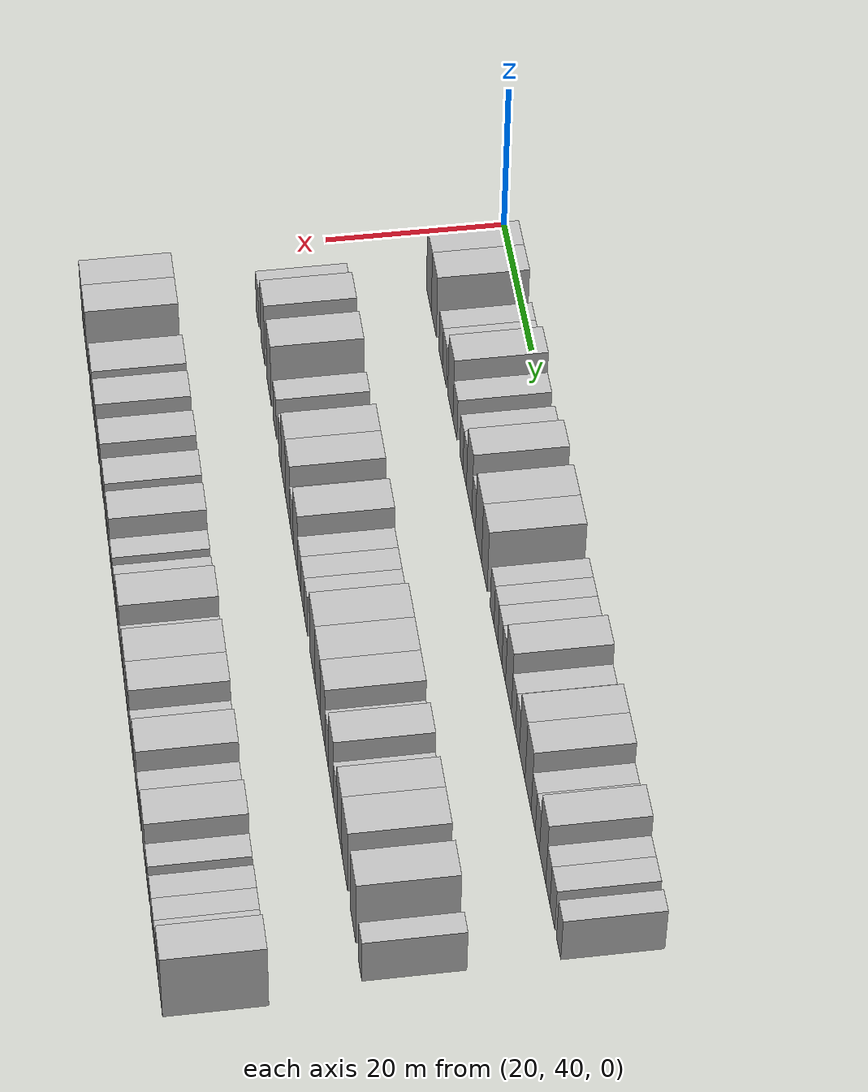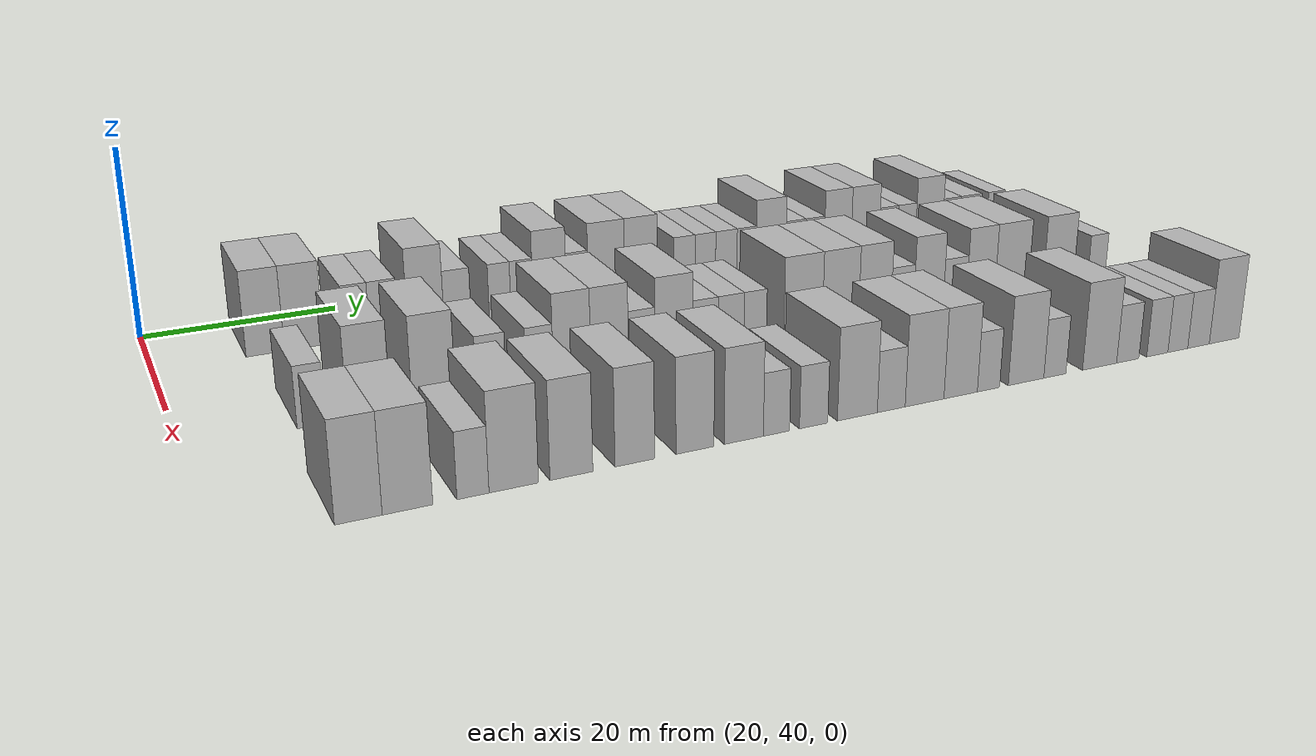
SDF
<sdf version="1.6">
 <world name="default">
  <model name="building_76">
   <static>1</static>
   <pose>25.0000 50.7838 0 0.000000 0.000000 0.000000</pose>
   <link name="link">
    <pose>0 0 4.50 0 0 0</pose>
    <collision name="collision"><geometry><box><size>10.0000 3.7774 9.0000</size></box></geometry></collision>
    <visual name="visual">
     <cast_shadows>0</cast_shadows>
     <geometry><box><size>10.0000 3.7774 9.0000</size></box></geometry>
     <material>
      <script>
       <uri>model://HANNAS_wall/materials/scripts</uri>
       <uri>model://HANNAS_wall/materials/textures</uri>
       <name>vrc/HANNAS_wall</name>
      </script>
     </material>
    </visual>
   </link>
  </model>
  <model name="building_77">
   <static>1</static>
   <pose>25.0000 54.6504 0 0.000000 0.000000 0.000000</pose>
   <link name="link">
    <pose>0 0 4.50 0 0 0</pose>
    <collision name="collision"><geometry><box><size>10.0000 3.9557 9.0000</size></box></geometry></collision>
    <visual name="visual">
     <cast_shadows>0</cast_shadows>
     <geometry><box><size>10.0000 3.9557 9.0000</size></box></geometry>
     <material>
      <script>
       <uri>model://HANNAS_wall/materials/scripts</uri>
       <uri>model://HANNAS_wall/materials/textures</uri>
       <name>vrc/HANNAS_wall</name>
      </script>
     </material>
    </visual>
   </link>
  </model>
  <model name="building_78">
   <static>1</static>
   <pose>25.0000 59.9779 0 0.000000 0.000000 0.000000</pose>
   <link name="link">
    <pose>0 0 3.00 0 0 0</pose>
    <collision name="collision"><geometry><box><size>10.0000 2.6995 6.0000</size></box></geometry></collision>
    <visual name="visual">
     <cast_shadows>0</cast_shadows>
     <geometry><box><size>10.0000 2.6995 6.0000</size></box></geometry>
     <material>
      <script>
       <uri>model://HANNAS_wall/materials/scripts</uri>
       <uri>model://HANNAS_wall/materials/textures</uri>
       <name>vrc/HANNAS_wall</name>
      </script>
     </material>
    </visual>
   </link>
  </model>
  <model name="building_79">
   <static>1</static>
   <pose>25.0000 62.8189 0 0.000000 0.000000 0.000000</pose>
   <link name="link">
    <pose>0 0 3.00 0 0 0</pose>
    <collision name="collision"><geometry><box><size>10.0000 2.9825 6.0000</size></box></geometry></collision>
    <visual name="visual">
     <cast_shadows>0</cast_shadows>
     <geometry><box><size>10.0000 2.9825 6.0000</size></box></geometry>
     <material>
      <script>
       <uri>model://HANNAS_wall/materials/scripts</uri>
       <uri>model://HANNAS_wall/materials/textures</uri>
       <name>vrc/HANNAS_wall</name>
      </script>
     </material>
    </visual>
   </link>
  </model>
  <model name="building_80">
   <static>1</static>
   <pose>25.0000 67.2562 0 0.000000 0.000000 0.000000</pose>
   <link name="link">
    <pose>0 0 4.50 0 0 0</pose>
    <collision name="collision"><geometry><box><size>10.0000 3.8920 9.0000</size></box></geometry></collision>
    <visual name="visual">
     <cast_shadows>0</cast_shadows>
     <geometry><box><size>10.0000 3.8920 9.0000</size></box></geometry>
     <material>
      <script>
       <uri>model://HANNAS_wall/materials/scripts</uri>
       <uri>model://HANNAS_wall/materials/textures</uri>
       <name>vrc/HANNAS_wall</name>
      </script>
     </material>
    </visual>
   </link>
  </model>
  <model name="building_81">
   <static>1</static>
   <pose>25.0000 70.6733 0 0.000000 0.000000 0.000000</pose>
   <link name="link">
    <pose>0 0 3.00 0 0 0</pose>
    <collision name="collision"><geometry><box><size>10.0000 2.9423 6.0000</size></box></geometry></collision>
    <visual name="visual">
     <cast_shadows>0</cast_shadows>
     <geometry><box><size>10.0000 2.9423 6.0000</size></box></geometry>
     <material>
      <script>
       <uri>model://HANNAS_wall/materials/scripts</uri>
       <uri>model://HANNAS_wall/materials/textures</uri>
       <name>vrc/HANNAS_wall</name>
      </script>
     </material>
    </visual>
   </link>
  </model>
  <model name="building_82">
   <static>1</static>
   <pose>25.0000 75.3547 0 0.000000 0.000000 0.000000</pose>
   <link name="link">
    <pose>0 0 3.00 0 0 0</pose>
    <collision name="collision"><geometry><box><size>10.0000 2.4203 6.0000</size></box></geometry></collision>
    <visual name="visual">
     <cast_shadows>0</cast_shadows>
     <geometry><box><size>10.0000 2.4203 6.0000</size></box></geometry>
     <material>
      <script>
       <uri>model://HANNAS_wall/materials/scripts</uri>
       <uri>model://HANNAS_wall/materials/textures</uri>
       <name>vrc/HANNAS_wall</name>
      </script>
     </material>
    </visual>
   </link>
  </model>
  <model name="building_83">
   <static>1</static>
   <pose>25.0000 77.8118 0 0.000000 0.000000 0.000000</pose>
   <link name="link">
    <pose>0 0 3.00 0 0 0</pose>
    <collision name="collision"><geometry><box><size>10.0000 2.4938 6.0000</size></box></geometry></collision>
    <visual name="visual">
     <cast_shadows>0</cast_shadows>
     <geometry><box><size>10.0000 2.4938 6.0000</size></box></geometry>
     <material>
      <script>
       <uri>model://HANNAS_wall/materials/scripts</uri>
       <uri>model://HANNAS_wall/materials/textures</uri>
       <name>vrc/HANNAS_wall</name>
      </script>
     </material>
    </visual>
   </link>
  </model>
  <model name="building_84">
   <static>1</static>
   <pose>25.0000 80.9627 0 0.000000 0.000000 0.000000</pose>
   <link name="link">
    <pose>0 0 4.50 0 0 0</pose>
    <collision name="collision"><geometry><box><size>10.0000 3.8081 9.0000</size></box></geometry></collision>
    <visual name="visual">
     <cast_shadows>0</cast_shadows>
     <geometry><box><size>10.0000 3.8081 9.0000</size></box></geometry>
     <material>
      <script>
       <uri>model://HANNAS_wall/materials/scripts</uri>
       <uri>model://HANNAS_wall/materials/textures</uri>
       <name>vrc/HANNAS_wall</name>
      </script>
     </material>
    </visual>
   </link>
  </model>
  <model name="building_85">
   <static>1</static>
   <pose>25.0000 84.1390 0 0.000000 0.000000 0.000000</pose>
   <link name="link">
    <pose>0 0 3.00 0 0 0</pose>
    <collision name="collision"><geometry><box><size>10.0000 2.5444 6.0000</size></box></geometry></collision>
    <visual name="visual">
     <cast_shadows>0</cast_shadows>
     <geometry><box><size>10.0000 2.5444 6.0000</size></box></geometry>
     <material>
      <script>
       <uri>model://HANNAS_wall/materials/scripts</uri>
       <uri>model://HANNAS_wall/materials/textures</uri>
       <name>vrc/HANNAS_wall</name>
      </script>
     </material>
    </visual>
   </link>
  </model>
  <model name="building_86">
   <static>1</static>
   <pose>25.0000 87.5501 0 0.000000 0.000000 0.000000</pose>
   <link name="link">
    <pose>0 0 4.50 0 0 0</pose>
    <collision name="collision"><geometry><box><size>10.0000 4.2779 9.0000</size></box></geometry></collision>
    <visual name="visual">
     <cast_shadows>0</cast_shadows>
     <geometry><box><size>10.0000 4.2779 9.0000</size></box></geometry>
     <material>
      <script>
       <uri>model://HANNAS_wall/materials/scripts</uri>
       <uri>model://HANNAS_wall/materials/textures</uri>
       <name>vrc/HANNAS_wall</name>
      </script>
     </material>
    </visual>
   </link>
  </model>
  <model name="building_87">
   <static>1</static>
   <pose>25.0000 91.6725 0 0.000000 0.000000 0.000000</pose>
   <link name="link">
    <pose>0 0 4.50 0 0 0</pose>
    <collision name="collision"><geometry><box><size>10.0000 3.9668 9.0000</size></box></geometry></collision>
    <visual name="visual">
     <cast_shadows>0</cast_shadows>
     <geometry><box><size>10.0000 3.9668 9.0000</size></box></geometry>
     <material>
      <script>
       <uri>model://HANNAS_wall/materials/scripts</uri>
       <uri>model://HANNAS_wall/materials/textures</uri>
       <name>vrc/HANNAS_wall</name>
      </script>
     </material>
    </visual>
   </link>
  </model>
  <model name="building_88">
   <static>1</static>
   <pose>25.0000 96.9498 0 0.000000 0.000000 0.000000</pose>
   <link name="link">
    <pose>0 0 3.00 0 0 0</pose>
    <collision name="collision"><geometry><box><size>10.0000 2.5880 6.0000</size></box></geometry></collision>
    <visual name="visual">
     <cast_shadows>0</cast_shadows>
     <geometry><box><size>10.0000 2.5880 6.0000</size></box></geometry>
     <material>
      <script>
       <uri>model://HANNAS_wall/materials/scripts</uri>
       <uri>model://HANNAS_wall/materials/textures</uri>
       <name>vrc/HANNAS_wall</name>
      </script>
     </material>
    </visual>
   </link>
  </model>
  <model name="building_89">
   <static>1</static>
   <pose>25.0000 99.5317 0 0.000000 0.000000 0.000000</pose>
   <link name="link">
    <pose>0 0 3.00 0 0 0</pose>
    <collision name="collision"><geometry><box><size>10.0000 2.5759 6.0000</size></box></geometry></collision>
    <visual name="visual">
     <cast_shadows>0</cast_shadows>
     <geometry><box><size>10.0000 2.5759 6.0000</size></box></geometry>
     <material>
      <script>
       <uri>model://HANNAS_wall/materials/scripts</uri>
       <uri>model://HANNAS_wall/materials/textures</uri>
       <name>vrc/HANNAS_wall</name>
      </script>
     </material>
    </visual>
   </link>
  </model>
  <model name="building_90">
   <static>1</static>
   <pose>25.0000 102.1684 0 0.000000 0.000000 0.000000</pose>
   <link name="link">
    <pose>0 0 3.00 0 0 0</pose>
    <collision name="collision"><geometry><box><size>10.0000 2.6974 6.0000</size></box></geometry></collision>
    <visual name="visual">
     <cast_shadows>0</cast_shadows>
     <geometry><box><size>10.0000 2.6974 6.0000</size></box></geometry>
     <material>
      <script>
       <uri>model://HANNAS_wall/materials/scripts</uri>
       <uri>model://HANNAS_wall/materials/textures</uri>
       <name>vrc/HANNAS_wall</name>
      </script>
     </material>
    </visual>
   </link>
  </model>
  <model name="building_91">
   <static>1</static>
   <pose>25.0000 104.7314 0 0.000000 0.000000 0.000000</pose>
   <link name="link">
    <pose>0 0 3.00 0 0 0</pose>
    <collision name="collision"><geometry><box><size>10.0000 2.4287 6.0000</size></box></geometry></collision>
    <visual name="visual">
     <cast_shadows>0</cast_shadows>
     <geometry><box><size>10.0000 2.4287 6.0000</size></box></geometry>
     <material>
      <script>
       <uri>model://HANNAS_wall/materials/scripts</uri>
       <uri>model://HANNAS_wall/materials/textures</uri>
       <name>vrc/HANNAS_wall</name>
      </script>
     </material>
    </visual>
   </link>
  </model>
  <model name="building_92">
   <static>1</static>
   <pose>25.0000 107.8652 0 0.000000 0.000000 0.000000</pose>
   <link name="link">
    <pose>0 0 4.50 0 0 0</pose>
    <collision name="collision"><geometry><box><size>10.0000 3.8388 9.0000</size></box></geometry></collision>
    <visual name="visual">
     <cast_shadows>0</cast_shadows>
     <geometry><box><size>10.0000 3.8388 9.0000</size></box></geometry>
     <material>
      <script>
       <uri>model://HANNAS_wall/materials/scripts</uri>
       <uri>model://HANNAS_wall/materials/textures</uri>
       <name>vrc/HANNAS_wall</name>
      </script>
     </material>
    </visual>
   </link>
  </model>
  <model name="building_93">
   <static>1</static>
   <pose>25.0000 111.0944 0 0.000000 0.000000 0.000000</pose>
   <link name="link">
    <pose>0 0 3.00 0 0 0</pose>
    <collision name="collision"><geometry><box><size>10.0000 2.6196 6.0000</size></box></geometry></collision>
    <visual name="visual">
     <cast_shadows>0</cast_shadows>
     <geometry><box><size>10.0000 2.6196 6.0000</size></box></geometry>
     <material>
      <script>
       <uri>model://HANNAS_wall/materials/scripts</uri>
       <uri>model://HANNAS_wall/materials/textures</uri>
       <name>vrc/HANNAS_wall</name>
      </script>
     </material>
    </visual>
   </link>
  </model>
  <model name="building_94">
   <static>1</static>
   <pose>25.0000 113.6409 0 0.000000 0.000000 0.000000</pose>
   <link name="link">
    <pose>0 0 3.00 0 0 0</pose>
    <collision name="collision"><geometry><box><size>10.0000 2.4734 6.0000</size></box></geometry></collision>
    <visual name="visual">
     <cast_shadows>0</cast_shadows>
     <geometry><box><size>10.0000 2.4734 6.0000</size></box></geometry>
     <material>
      <script>
       <uri>model://HANNAS_wall/materials/scripts</uri>
       <uri>model://HANNAS_wall/materials/textures</uri>
       <name>vrc/HANNAS_wall</name>
      </script>
     </material>
    </visual>
   </link>
  </model>
  <model name="building_95">
   <static>1</static>
   <pose>25.0000 116.6881 0 0.000000 0.000000 0.000000</pose>
   <link name="link">
    <pose>0 0 4.50 0 0 0</pose>
    <collision name="collision"><geometry><box><size>10.0000 3.6209 9.0000</size></box></geometry></collision>
    <visual name="visual">
     <cast_shadows>0</cast_shadows>
     <geometry><box><size>10.0000 3.6209 9.0000</size></box></geometry>
     <material>
      <script>
       <uri>model://HANNAS_wall/materials/scripts</uri>
       <uri>model://HANNAS_wall/materials/textures</uri>
       <name>vrc/HANNAS_wall</name>
      </script>
     </material>
    </visual>
   </link>
  </model>
  <model name="building_96">
   <static>1</static>
   <pose>25.0000 120.4184 0 0.000000 0.000000 0.000000</pose>
   <link name="link">
    <pose>0 0 4.50 0 0 0</pose>
    <collision name="collision"><geometry><box><size>10.0000 3.8398 9.0000</size></box></geometry></collision>
    <visual name="visual">
     <cast_shadows>0</cast_shadows>
     <geometry><box><size>10.0000 3.8398 9.0000</size></box></geometry>
     <material>
      <script>
       <uri>model://HANNAS_wall/materials/scripts</uri>
       <uri>model://HANNAS_wall/materials/textures</uri>
       <name>vrc/HANNAS_wall</name>
      </script>
     </material>
    </visual>
   </link>
  </model>
  <model name="building_97">
   <static>1</static>
   <pose>25.0000 123.6236 0 0.000000 0.000000 0.000000</pose>
   <link name="link">
    <pose>0 0 3.00 0 0 0</pose>
    <collision name="collision"><geometry><box><size>10.0000 2.5706 6.0000</size></box></geometry></collision>
    <visual name="visual">
     <cast_shadows>0</cast_shadows>
     <geometry><box><size>10.0000 2.5706 6.0000</size></box></geometry>
     <material>
      <script>
       <uri>model://HANNAS_wall/materials/scripts</uri>
       <uri>model://HANNAS_wall/materials/textures</uri>
       <name>vrc/HANNAS_wall</name>
      </script>
     </material>
    </visual>
   </link>
  </model>
  <model name="building_98">
   <static>1</static>
   <pose>25.0000 126.1742 0 0.000000 0.000000 0.000000</pose>
   <link name="link">
    <pose>0 0 3.00 0 0 0</pose>
    <collision name="collision"><geometry><box><size>10.0000 2.5305 6.0000</size></box></geometry></collision>
    <visual name="visual">
     <cast_shadows>0</cast_shadows>
     <geometry><box><size>10.0000 2.5305 6.0000</size></box></geometry>
     <material>
      <script>
       <uri>model://HANNAS_wall/materials/scripts</uri>
       <uri>model://HANNAS_wall/materials/textures</uri>
       <name>vrc/HANNAS_wall</name>
      </script>
     </material>
    </visual>
   </link>
  </model>
  <model name="building_99">
   <static>1</static>
   <pose>25.0000 129.3551 0 0.000000 0.000000 0.000000</pose>
   <link name="link">
    <pose>0 0 4.50 0 0 0</pose>
    <collision name="collision"><geometry><box><size>10.0000 3.8312 9.0000</size></box></geometry></collision>
    <visual name="visual">
     <cast_shadows>0</cast_shadows>
     <geometry><box><size>10.0000 3.8312 9.0000</size></box></geometry>
     <material>
      <script>
       <uri>model://HANNAS_wall/materials/scripts</uri>
       <uri>model://HANNAS_wall/materials/textures</uri>
       <name>vrc/HANNAS_wall</name>
      </script>
     </material>
    </visual>
   </link>
  </model>
  <model name="building_100">
   <static>1</static>
   <pose>25.0000 132.5282 0 0.000000 0.000000 0.000000</pose>
   <link name="link">
    <pose>0 0 3.00 0 0 0</pose>
    <collision name="collision"><geometry><box><size>10.0000 2.5151 6.0000</size></box></geometry></collision>
    <visual name="visual">
     <cast_shadows>0</cast_shadows>
     <geometry><box><size>10.0000 2.5151 6.0000</size></box></geometry>
     <material>
      <script>
       <uri>model://HANNAS_wall/materials/scripts</uri>
       <uri>model://HANNAS_wall/materials/textures</uri>
       <name>vrc/HANNAS_wall</name>
      </script>
     </material>
    </visual>
   </link>
  </model>
  <model name="building_101">
   <static>1</static>
   <pose>25.0000 135.2540 0 0.000000 0.000000 0.000000</pose>
   <link name="link">
    <pose>0 0 3.00 0 0 0</pose>
    <collision name="collision"><geometry><box><size>10.0000 2.9367 6.0000</size></box></geometry></collision>
    <visual name="visual">
     <cast_shadows>0</cast_shadows>
     <geometry><box><size>10.0000 2.9367 6.0000</size></box></geometry>
     <material>
      <script>
       <uri>model://HANNAS_wall/materials/scripts</uri>
       <uri>model://HANNAS_wall/materials/textures</uri>
       <name>vrc/HANNAS_wall</name>
      </script>
     </material>
    </visual>
   </link>
  </model>
  <model name="building_102">
   <static>1</static>
   <pose>25.0000 138.9803 0 0.000000 0.000000 0.000000</pose>
   <link name="link">
    <pose>0 0 3.00 0 0 0</pose>
    <collision name="collision"><geometry><box><size>10.0000 2.5159 6.0000</size></box></geometry></collision>
    <visual name="visual">
     <cast_shadows>0</cast_shadows>
     <geometry><box><size>10.0000 2.5159 6.0000</size></box></geometry>
     <material>
      <script>
       <uri>model://HANNAS_wall/materials/scripts</uri>
       <uri>model://HANNAS_wall/materials/textures</uri>
       <name>vrc/HANNAS_wall</name>
      </script>
     </material>
    </visual>
   </link>
  </model>
  <model name="building_191">
   <static>1</static>
   <pose>44.0000 51.3273 0 0.000000 0.000000 0.000000</pose>
   <link name="link">
    <pose>0 0 3.00 0 0 0</pose>
    <collision name="collision"><geometry><box><size>10.0000 2.5167 6.0000</size></box></geometry></collision>
    <visual name="visual">
     <cast_shadows>0</cast_shadows>
     <geometry><box><size>10.0000 2.5167 6.0000</size></box></geometry>
     <material>
      <script>
       <uri>model://HANNAS_wall/materials/scripts</uri>
       <uri>model://HANNAS_wall/materials/textures</uri>
       <name>vrc/HANNAS_wall</name>
      </script>
     </material>
    </visual>
   </link>
  </model>
  <model name="building_192">
   <static>1</static>
   <pose>44.0000 56.5664 0 0.000000 0.000000 0.000000</pose>
   <link name="link">
    <pose>0 0 4.50 0 0 0</pose>
    <collision name="collision"><geometry><box><size>10.0000 3.9616 9.0000</size></box></geometry></collision>
    <visual name="visual">
     <cast_shadows>0</cast_shadows>
     <geometry><box><size>10.0000 3.9616 9.0000</size></box></geometry>
     <material>
      <script>
       <uri>model://HANNAS_wall/materials/scripts</uri>
       <uri>model://HANNAS_wall/materials/textures</uri>
       <name>vrc/HANNAS_wall</name>
      </script>
     </material>
    </visual>
   </link>
  </model>
  <model name="building_193">
   <static>1</static>
   <pose>44.0000 62.6140 0 0.000000 0.000000 0.000000</pose>
   <link name="link">
    <pose>0 0 4.50 0 0 0</pose>
    <collision name="collision"><geometry><box><size>10.0000 4.1336 9.0000</size></box></geometry></collision>
    <visual name="visual">
     <cast_shadows>0</cast_shadows>
     <geometry><box><size>10.0000 4.1336 9.0000</size></box></geometry>
     <material>
      <script>
       <uri>model://HANNAS_wall/materials/scripts</uri>
       <uri>model://HANNAS_wall/materials/textures</uri>
       <name>vrc/HANNAS_wall</name>
      </script>
     </material>
    </visual>
   </link>
  </model>
  <model name="building_194">
   <static>1</static>
   <pose>44.0000 68.1393 0 0.000000 0.000000 0.000000</pose>
   <link name="link">
    <pose>0 0 3.00 0 0 0</pose>
    <collision name="collision"><geometry><box><size>10.0000 2.9169 6.0000</size></box></geometry></collision>
    <visual name="visual">
     <cast_shadows>0</cast_shadows>
     <geometry><box><size>10.0000 2.9169 6.0000</size></box></geometry>
     <material>
      <script>
       <uri>model://HANNAS_wall/materials/scripts</uri>
       <uri>model://HANNAS_wall/materials/textures</uri>
       <name>vrc/HANNAS_wall</name>
      </script>
     </material>
    </visual>
   </link>
  </model>
  <model name="building_195">
   <static>1</static>
   <pose>44.0000 72.9644 0 0.000000 0.000000 0.000000</pose>
   <link name="link">
    <pose>0 0 3.00 0 0 0</pose>
    <collision name="collision"><geometry><box><size>10.0000 2.7332 6.0000</size></box></geometry></collision>
    <visual name="visual">
     <cast_shadows>0</cast_shadows>
     <geometry><box><size>10.0000 2.7332 6.0000</size></box></geometry>
     <material>
      <script>
       <uri>model://HANNAS_wall/materials/scripts</uri>
       <uri>model://HANNAS_wall/materials/textures</uri>
       <name>vrc/HANNAS_wall</name>
      </script>
     </material>
    </visual>
   </link>
  </model>
  <model name="building_196">
   <static>1</static>
   <pose>44.0000 76.2454 0 0.000000 0.000000 0.000000</pose>
   <link name="link">
    <pose>0 0 4.50 0 0 0</pose>
    <collision name="collision"><geometry><box><size>10.0000 3.8287 9.0000</size></box></geometry></collision>
    <visual name="visual">
     <cast_shadows>0</cast_shadows>
     <geometry><box><size>10.0000 3.8287 9.0000</size></box></geometry>
     <material>
      <script>
       <uri>model://HANNAS_wall/materials/scripts</uri>
       <uri>model://HANNAS_wall/materials/textures</uri>
       <name>vrc/HANNAS_wall</name>
      </script>
     </material>
    </visual>
   </link>
  </model>
  <model name="building_197">
   <static>1</static>
   <pose>44.0000 80.1251 0 0.000000 0.000000 0.000000</pose>
   <link name="link">
    <pose>0 0 4.50 0 0 0</pose>
    <collision name="collision"><geometry><box><size>10.0000 3.9308 9.0000</size></box></geometry></collision>
    <visual name="visual">
     <cast_shadows>0</cast_shadows>
     <geometry><box><size>10.0000 3.9308 9.0000</size></box></geometry>
     <material>
      <script>
       <uri>model://HANNAS_wall/materials/scripts</uri>
       <uri>model://HANNAS_wall/materials/textures</uri>
       <name>vrc/HANNAS_wall</name>
      </script>
     </material>
    </visual>
   </link>
  </model>
  <model name="building_198">
   <static>1</static>
   <pose>44.0000 83.5144 0 0.000000 0.000000 0.000000</pose>
   <link name="link">
    <pose>0 0 3.00 0 0 0</pose>
    <collision name="collision"><geometry><box><size>10.0000 2.8479 6.0000</size></box></geometry></collision>
    <visual name="visual">
     <cast_shadows>0</cast_shadows>
     <geometry><box><size>10.0000 2.8479 6.0000</size></box></geometry>
     <material>
      <script>
       <uri>model://HANNAS_wall/materials/scripts</uri>
       <uri>model://HANNAS_wall/materials/textures</uri>
       <name>vrc/HANNAS_wall</name>
      </script>
     </material>
    </visual>
   </link>
  </model>
  <model name="building_199">
   <static>1</static>
   <pose>44.0000 86.9889 0 0.000000 0.000000 0.000000</pose>
   <link name="link">
    <pose>0 0 4.50 0 0 0</pose>
    <collision name="collision"><geometry><box><size>10.0000 4.1011 9.0000</size></box></geometry></collision>
    <visual name="visual">
     <cast_shadows>0</cast_shadows>
     <geometry><box><size>10.0000 4.1011 9.0000</size></box></geometry>
     <material>
      <script>
       <uri>model://HANNAS_wall/materials/scripts</uri>
       <uri>model://HANNAS_wall/materials/textures</uri>
       <name>vrc/HANNAS_wall</name>
      </script>
     </material>
    </visual>
   </link>
  </model>
  <model name="building_200">
   <static>1</static>
   <pose>44.0000 90.4192 0 0.000000 0.000000 0.000000</pose>
   <link name="link">
    <pose>0 0 3.00 0 0 0</pose>
    <collision name="collision"><geometry><box><size>10.0000 2.7595 6.0000</size></box></geometry></collision>
    <visual name="visual">
     <cast_shadows>0</cast_shadows>
     <geometry><box><size>10.0000 2.7595 6.0000</size></box></geometry>
     <material>
      <script>
       <uri>model://HANNAS_wall/materials/scripts</uri>
       <uri>model://HANNAS_wall/materials/textures</uri>
       <name>vrc/HANNAS_wall</name>
      </script>
     </material>
    </visual>
   </link>
  </model>
  <model name="building_201">
   <static>1</static>
   <pose>44.0000 93.2604 0 0.000000 0.000000 0.000000</pose>
   <link name="link">
    <pose>0 0 3.00 0 0 0</pose>
    <collision name="collision"><geometry><box><size>10.0000 2.9230 6.0000</size></box></geometry></collision>
    <visual name="visual">
     <cast_shadows>0</cast_shadows>
     <geometry><box><size>10.0000 2.9230 6.0000</size></box></geometry>
     <material>
      <script>
       <uri>model://HANNAS_wall/materials/scripts</uri>
       <uri>model://HANNAS_wall/materials/textures</uri>
       <name>vrc/HANNAS_wall</name>
      </script>
     </material>
    </visual>
   </link>
  </model>
  <model name="building_202">
   <static>1</static>
   <pose>44.0000 95.9906 0 0.000000 0.000000 0.000000</pose>
   <link name="link">
    <pose>0 0 3.00 0 0 0</pose>
    <collision name="collision"><geometry><box><size>10.0000 2.5373 6.0000</size></box></geometry></collision>
    <visual name="visual">
     <cast_shadows>0</cast_shadows>
     <geometry><box><size>10.0000 2.5373 6.0000</size></box></geometry>
     <material>
      <script>
       <uri>model://HANNAS_wall/materials/scripts</uri>
       <uri>model://HANNAS_wall/materials/textures</uri>
       <name>vrc/HANNAS_wall</name>
      </script>
     </material>
    </visual>
   </link>
  </model>
  <model name="building_203">
   <static>1</static>
   <pose>44.0000 101.5090 0 0.000000 0.000000 0.000000</pose>
   <link name="link">
    <pose>0 0 4.50 0 0 0</pose>
    <collision name="collision"><geometry><box><size>10.0000 4.4995 9.0000</size></box></geometry></collision>
    <visual name="visual">
     <cast_shadows>0</cast_shadows>
     <geometry><box><size>10.0000 4.4995 9.0000</size></box></geometry>
     <material>
      <script>
       <uri>model://HANNAS_wall/materials/scripts</uri>
       <uri>model://HANNAS_wall/materials/textures</uri>
       <name>vrc/HANNAS_wall</name>
      </script>
     </material>
    </visual>
   </link>
  </model>
  <model name="building_204">
   <static>1</static>
   <pose>44.0000 105.9224 0 0.000000 0.000000 0.000000</pose>
   <link name="link">
    <pose>0 0 4.50 0 0 0</pose>
    <collision name="collision"><geometry><box><size>10.0000 4.3274 9.0000</size></box></geometry></collision>
    <visual name="visual">
     <cast_shadows>0</cast_shadows>
     <geometry><box><size>10.0000 4.3274 9.0000</size></box></geometry>
     <material>
      <script>
       <uri>model://HANNAS_wall/materials/scripts</uri>
       <uri>model://HANNAS_wall/materials/textures</uri>
       <name>vrc/HANNAS_wall</name>
      </script>
     </material>
    </visual>
   </link>
  </model>
  <model name="building_205">
   <static>1</static>
   <pose>44.0000 110.0585 0 0.000000 0.000000 0.000000</pose>
   <link name="link">
    <pose>0 0 4.50 0 0 0</pose>
    <collision name="collision"><geometry><box><size>10.0000 3.9447 9.0000</size></box></geometry></collision>
    <visual name="visual">
     <cast_shadows>0</cast_shadows>
     <geometry><box><size>10.0000 3.9447 9.0000</size></box></geometry>
     <material>
      <script>
       <uri>model://HANNAS_wall/materials/scripts</uri>
       <uri>model://HANNAS_wall/materials/textures</uri>
       <name>vrc/HANNAS_wall</name>
      </script>
     </material>
    </visual>
   </link>
  </model>
  <model name="building_206">
   <static>1</static>
   <pose>44.0000 113.4362 0 0.000000 0.000000 0.000000</pose>
   <link name="link">
    <pose>0 0 3.00 0 0 0</pose>
    <collision name="collision"><geometry><box><size>10.0000 2.8107 6.0000</size></box></geometry></collision>
    <visual name="visual">
     <cast_shadows>0</cast_shadows>
     <geometry><box><size>10.0000 2.8107 6.0000</size></box></geometry>
     <material>
      <script>
       <uri>model://HANNAS_wall/materials/scripts</uri>
       <uri>model://HANNAS_wall/materials/textures</uri>
       <name>vrc/HANNAS_wall</name>
      </script>
     </material>
    </visual>
   </link>
  </model>
  <model name="building_207">
   <static>1</static>
   <pose>44.0000 116.7201 0 0.000000 0.000000 0.000000</pose>
   <link name="link">
    <pose>0 0 4.50 0 0 0</pose>
    <collision name="collision"><geometry><box><size>10.0000 3.7572 9.0000</size></box></geometry></collision>
    <visual name="visual">
     <cast_shadows>0</cast_shadows>
     <geometry><box><size>10.0000 3.7572 9.0000</size></box></geometry>
     <material>
      <script>
       <uri>model://HANNAS_wall/materials/scripts</uri>
       <uri>model://HANNAS_wall/materials/textures</uri>
       <name>vrc/HANNAS_wall</name>
      </script>
     </material>
    </visual>
   </link>
  </model>
  <model name="building_208">
   <static>1</static>
   <pose>44.0000 120.0853 0 0.000000 0.000000 0.000000</pose>
   <link name="link">
    <pose>0 0 3.00 0 0 0</pose>
    <collision name="collision"><geometry><box><size>10.0000 2.9732 6.0000</size></box></geometry></collision>
    <visual name="visual">
     <cast_shadows>0</cast_shadows>
     <geometry><box><size>10.0000 2.9732 6.0000</size></box></geometry>
     <material>
      <script>
       <uri>model://HANNAS_wall/materials/scripts</uri>
       <uri>model://HANNAS_wall/materials/textures</uri>
       <name>vrc/HANNAS_wall</name>
      </script>
     </material>
    </visual>
   </link>
  </model>
  <model name="building_209">
   <static>1</static>
   <pose>44.0000 123.4156 0 0.000000 0.000000 0.000000</pose>
   <link name="link">
    <pose>0 0 4.50 0 0 0</pose>
    <collision name="collision"><geometry><box><size>10.0000 3.6874 9.0000</size></box></geometry></collision>
    <visual name="visual">
     <cast_shadows>0</cast_shadows>
     <geometry><box><size>10.0000 3.6874 9.0000</size></box></geometry>
     <material>
      <script>
       <uri>model://HANNAS_wall/materials/scripts</uri>
       <uri>model://HANNAS_wall/materials/textures</uri>
       <name>vrc/HANNAS_wall</name>
      </script>
     </material>
    </visual>
   </link>
  </model>
  <model name="building_210">
   <static>1</static>
   <pose>44.0000 127.4901 0 0.000000 0.000000 0.000000</pose>
   <link name="link">
    <pose>0 0 4.50 0 0 0</pose>
    <collision name="collision"><geometry><box><size>10.0000 4.4616 9.0000</size></box></geometry></collision>
    <visual name="visual">
     <cast_shadows>0</cast_shadows>
     <geometry><box><size>10.0000 4.4616 9.0000</size></box></geometry>
     <material>
      <script>
       <uri>model://HANNAS_wall/materials/scripts</uri>
       <uri>model://HANNAS_wall/materials/textures</uri>
       <name>vrc/HANNAS_wall</name>
      </script>
     </material>
    </visual>
   </link>
  </model>
  <model name="building_211">
   <static>1</static>
   <pose>44.0000 133.8030 0 0.000000 0.000000 0.000000</pose>
   <link name="link">
    <pose>0 0 4.50 0 0 0</pose>
    <collision name="collision"><geometry><box><size>10.0000 4.1641 9.0000</size></box></geometry></collision>
    <visual name="visual">
     <cast_shadows>0</cast_shadows>
     <geometry><box><size>10.0000 4.1641 9.0000</size></box></geometry>
     <material>
      <script>
       <uri>model://HANNAS_wall/materials/scripts</uri>
       <uri>model://HANNAS_wall/materials/textures</uri>
       <name>vrc/HANNAS_wall</name>
      </script>
     </material>
    </visual>
   </link>
  </model>
  <model name="building_212">
   <static>1</static>
   <pose>44.0000 139.0987 0 0.000000 0.000000 0.000000</pose>
   <link name="link">
    <pose>0 0 3.00 0 0 0</pose>
    <collision name="collision"><geometry><box><size>10.0000 2.4273 6.0000</size></box></geometry></collision>
    <visual name="visual">
     <cast_shadows>0</cast_shadows>
     <geometry><box><size>10.0000 2.4273 6.0000</size></box></geometry>
     <material>
      <script>
       <uri>model://HANNAS_wall/materials/scripts</uri>
       <uri>model://HANNAS_wall/materials/textures</uri>
       <name>vrc/HANNAS_wall</name>
      </script>
     </material>
    </visual>
   </link>
  </model>
  <model name="building_313">
   <static>1</static>
   <pose>63.0000 50.9817 0 0.000000 0.000000 0.000000</pose>
   <link name="link">
    <pose>0 0 4.50 0 0 0</pose>
    <collision name="collision"><geometry><box><size>10.0000 3.7936 9.0000</size></box></geometry></collision>
    <visual name="visual">
     <cast_shadows>0</cast_shadows>
     <geometry><box><size>10.0000 3.7936 9.0000</size></box></geometry>
     <material>
      <script>
       <uri>model://HANNAS_wall/materials/scripts</uri>
       <uri>model://HANNAS_wall/materials/textures</uri>
       <name>vrc/HANNAS_wall</name>
      </script>
     </material>
    </visual>
   </link>
  </model>
  <model name="building_314">
   <static>1</static>
   <pose>63.0000 54.9350 0 0.000000 0.000000 0.000000</pose>
   <link name="link">
    <pose>0 0 4.50 0 0 0</pose>
    <collision name="collision"><geometry><box><size>10.0000 4.1129 9.0000</size></box></geometry></collision>
    <visual name="visual">
     <cast_shadows>0</cast_shadows>
     <geometry><box><size>10.0000 4.1129 9.0000</size></box></geometry>
     <material>
      <script>
       <uri>model://HANNAS_wall/materials/scripts</uri>
       <uri>model://HANNAS_wall/materials/textures</uri>
       <name>vrc/HANNAS_wall</name>
      </script>
     </material>
    </visual>
   </link>
  </model>
  <model name="building_315">
   <static>1</static>
   <pose>63.0000 60.3451 0 0.000000 0.000000 0.000000</pose>
   <link name="link">
    <pose>0 0 3.00 0 0 0</pose>
    <collision name="collision"><geometry><box><size>10.0000 2.7073 6.0000</size></box></geometry></collision>
    <visual name="visual">
     <cast_shadows>0</cast_shadows>
     <geometry><box><size>10.0000 2.7073 6.0000</size></box></geometry>
     <material>
      <script>
       <uri>model://HANNAS_wall/materials/scripts</uri>
       <uri>model://HANNAS_wall/materials/textures</uri>
       <name>vrc/HANNAS_wall</name>
      </script>
     </material>
    </visual>
   </link>
  </model>
  <model name="building_316">
   <static>1</static>
   <pose>63.0000 63.8297 0 0.000000 0.000000 0.000000</pose>
   <link name="link">
    <pose>0 0 4.50 0 0 0</pose>
    <collision name="collision"><geometry><box><size>10.0000 4.2619 9.0000</size></box></geometry></collision>
    <visual name="visual">
     <cast_shadows>0</cast_shadows>
     <geometry><box><size>10.0000 4.2619 9.0000</size></box></geometry>
     <material>
      <script>
       <uri>model://HANNAS_wall/materials/scripts</uri>
       <uri>model://HANNAS_wall/materials/textures</uri>
       <name>vrc/HANNAS_wall</name>
      </script>
     </material>
    </visual>
   </link>
  </model>
  <model name="building_317">
   <static>1</static>
   <pose>63.0000 68.8718 0 0.000000 0.000000 0.000000</pose>
   <link name="link">
    <pose>0 0 4.50 0 0 0</pose>
    <collision name="collision"><geometry><box><size>10.0000 3.8224 9.0000</size></box></geometry></collision>
    <visual name="visual">
     <cast_shadows>0</cast_shadows>
     <geometry><box><size>10.0000 3.8224 9.0000</size></box></geometry>
     <material>
      <script>
       <uri>model://HANNAS_wall/materials/scripts</uri>
       <uri>model://HANNAS_wall/materials/textures</uri>
       <name>vrc/HANNAS_wall</name>
      </script>
     </material>
    </visual>
   </link>
  </model>
  <model name="building_318">
   <static>1</static>
   <pose>63.0000 74.6124 0 0.000000 0.000000 0.000000</pose>
   <link name="link">
    <pose>0 0 4.50 0 0 0</pose>
    <collision name="collision"><geometry><box><size>10.0000 3.6588 9.0000</size></box></geometry></collision>
    <visual name="visual">
     <cast_shadows>0</cast_shadows>
     <geometry><box><size>10.0000 3.6588 9.0000</size></box></geometry>
     <material>
      <script>
       <uri>model://HANNAS_wall/materials/scripts</uri>
       <uri>model://HANNAS_wall/materials/textures</uri>
       <name>vrc/HANNAS_wall</name>
      </script>
     </material>
    </visual>
   </link>
  </model>
  <model name="building_319">
   <static>1</static>
   <pose>63.0000 80.2559 0 0.000000 0.000000 0.000000</pose>
   <link name="link">
    <pose>0 0 4.50 0 0 0</pose>
    <collision name="collision"><geometry><box><size>10.0000 3.6282 9.0000</size></box></geometry></collision>
    <visual name="visual">
     <cast_shadows>0</cast_shadows>
     <geometry><box><size>10.0000 3.6282 9.0000</size></box></geometry>
     <material>
      <script>
       <uri>model://HANNAS_wall/materials/scripts</uri>
       <uri>model://HANNAS_wall/materials/textures</uri>
       <name>vrc/HANNAS_wall</name>
      </script>
     </material>
    </visual>
   </link>
  </model>
  <model name="building_320">
   <static>1</static>
   <pose>63.0000 84.9916 0 0.000000 0.000000 0.000000</pose>
   <link name="link">
    <pose>0 0 4.50 0 0 0</pose>
    <collision name="collision"><geometry><box><size>10.0000 3.8432 9.0000</size></box></geometry></collision>
    <visual name="visual">
     <cast_shadows>0</cast_shadows>
     <geometry><box><size>10.0000 3.8432 9.0000</size></box></geometry>
     <material>
      <script>
       <uri>model://HANNAS_wall/materials/scripts</uri>
       <uri>model://HANNAS_wall/materials/textures</uri>
       <name>vrc/HANNAS_wall</name>
      </script>
     </material>
    </visual>
   </link>
  </model>
  <model name="building_321">
   <static>1</static>
   <pose>63.0000 88.2255 0 0.000000 0.000000 0.000000</pose>
   <link name="link">
    <pose>0 0 3.00 0 0 0</pose>
    <collision name="collision"><geometry><box><size>10.0000 2.6246 6.0000</size></box></geometry></collision>
    <visual name="visual">
     <cast_shadows>0</cast_shadows>
     <geometry><box><size>10.0000 2.6246 6.0000</size></box></geometry>
     <material>
      <script>
       <uri>model://HANNAS_wall/materials/scripts</uri>
       <uri>model://HANNAS_wall/materials/textures</uri>
       <name>vrc/HANNAS_wall</name>
      </script>
     </material>
    </visual>
   </link>
  </model>
  <model name="building_322">
   <static>1</static>
   <pose>63.0000 91.9874 0 0.000000 0.000000 0.000000</pose>
   <link name="link">
    <pose>0 0 3.00 0 0 0</pose>
    <collision name="collision"><geometry><box><size>10.0000 2.8994 6.0000</size></box></geometry></collision>
    <visual name="visual">
     <cast_shadows>0</cast_shadows>
     <geometry><box><size>10.0000 2.8994 6.0000</size></box></geometry>
     <material>
      <script>
       <uri>model://HANNAS_wall/materials/scripts</uri>
       <uri>model://HANNAS_wall/materials/textures</uri>
       <name>vrc/HANNAS_wall</name>
      </script>
     </material>
    </visual>
   </link>
  </model>
  <model name="building_323">
   <static>1</static>
   <pose>63.0000 96.5356 0 0.000000 0.000000 0.000000</pose>
   <link name="link">
    <pose>0 0 4.50 0 0 0</pose>
    <collision name="collision"><geometry><box><size>10.0000 4.1968 9.0000</size></box></geometry></collision>
    <visual name="visual">
     <cast_shadows>0</cast_shadows>
     <geometry><box><size>10.0000 4.1968 9.0000</size></box></geometry>
     <material>
      <script>
       <uri>model://HANNAS_wall/materials/scripts</uri>
       <uri>model://HANNAS_wall/materials/textures</uri>
       <name>vrc/HANNAS_wall</name>
      </script>
     </material>
    </visual>
   </link>
  </model>
  <model name="building_324">
   <static>1</static>
   <pose>63.0000 100.1312 0 0.000000 0.000000 0.000000</pose>
   <link name="link">
    <pose>0 0 3.00 0 0 0</pose>
    <collision name="collision"><geometry><box><size>10.0000 2.9944 6.0000</size></box></geometry></collision>
    <visual name="visual">
     <cast_shadows>0</cast_shadows>
     <geometry><box><size>10.0000 2.9944 6.0000</size></box></geometry>
     <material>
      <script>
       <uri>model://HANNAS_wall/materials/scripts</uri>
       <uri>model://HANNAS_wall/materials/textures</uri>
       <name>vrc/HANNAS_wall</name>
      </script>
     </material>
    </visual>
   </link>
  </model>
  <model name="building_325">
   <static>1</static>
   <pose>63.0000 103.7569 0 0.000000 0.000000 0.000000</pose>
   <link name="link">
    <pose>0 0 4.50 0 0 0</pose>
    <collision name="collision"><geometry><box><size>10.0000 4.2572 9.0000</size></box></geometry></collision>
    <visual name="visual">
     <cast_shadows>0</cast_shadows>
     <geometry><box><size>10.0000 4.2572 9.0000</size></box></geometry>
     <material>
      <script>
       <uri>model://HANNAS_wall/materials/scripts</uri>
       <uri>model://HANNAS_wall/materials/textures</uri>
       <name>vrc/HANNAS_wall</name>
      </script>
     </material>
    </visual>
   </link>
  </model>
  <model name="building_326">
   <static>1</static>
   <pose>63.0000 107.7602 0 0.000000 0.000000 0.000000</pose>
   <link name="link">
    <pose>0 0 4.50 0 0 0</pose>
    <collision name="collision"><geometry><box><size>10.0000 3.7494 9.0000</size></box></geometry></collision>
    <visual name="visual">
     <cast_shadows>0</cast_shadows>
     <geometry><box><size>10.0000 3.7494 9.0000</size></box></geometry>
     <material>
      <script>
       <uri>model://HANNAS_wall/materials/scripts</uri>
       <uri>model://HANNAS_wall/materials/textures</uri>
       <name>vrc/HANNAS_wall</name>
      </script>
     </material>
    </visual>
   </link>
  </model>
  <model name="building_327">
   <static>1</static>
   <pose>63.0000 110.9053 0 0.000000 0.000000 0.000000</pose>
   <link name="link">
    <pose>0 0 3.00 0 0 0</pose>
    <collision name="collision"><geometry><box><size>10.0000 2.5408 6.0000</size></box></geometry></collision>
    <visual name="visual">
     <cast_shadows>0</cast_shadows>
     <geometry><box><size>10.0000 2.5408 6.0000</size></box></geometry>
     <material>
      <script>
       <uri>model://HANNAS_wall/materials/scripts</uri>
       <uri>model://HANNAS_wall/materials/textures</uri>
       <name>vrc/HANNAS_wall</name>
      </script>
     </material>
    </visual>
   </link>
  </model>
  <model name="building_328">
   <static>1</static>
   <pose>63.0000 115.2547 0 0.000000 0.000000 0.000000</pose>
   <link name="link">
    <pose>0 0 4.50 0 0 0</pose>
    <collision name="collision"><geometry><box><size>10.0000 4.1580 9.0000</size></box></geometry></collision>
    <visual name="visual">
     <cast_shadows>0</cast_shadows>
     <geometry><box><size>10.0000 4.1580 9.0000</size></box></geometry>
     <material>
      <script>
       <uri>model://HANNAS_wall/materials/scripts</uri>
       <uri>model://HANNAS_wall/materials/textures</uri>
       <name>vrc/HANNAS_wall</name>
      </script>
     </material>
    </visual>
   </link>
  </model>
  <model name="building_329">
   <static>1</static>
   <pose>63.0000 118.6544 0 0.000000 0.000000 0.000000</pose>
   <link name="link">
    <pose>0 0 3.00 0 0 0</pose>
    <collision name="collision"><geometry><box><size>10.0000 2.6415 6.0000</size></box></geometry></collision>
    <visual name="visual">
     <cast_shadows>0</cast_shadows>
     <geometry><box><size>10.0000 2.6415 6.0000</size></box></geometry>
     <material>
      <script>
       <uri>model://HANNAS_wall/materials/scripts</uri>
       <uri>model://HANNAS_wall/materials/textures</uri>
       <name>vrc/HANNAS_wall</name>
      </script>
     </material>
    </visual>
   </link>
  </model>
  <model name="building_330">
   <static>1</static>
   <pose>63.0000 124.0671 0 0.000000 0.000000 0.000000</pose>
   <link name="link">
    <pose>0 0 4.50 0 0 0</pose>
    <collision name="collision"><geometry><box><size>10.0000 4.1838 9.0000</size></box></geometry></collision>
    <visual name="visual">
     <cast_shadows>0</cast_shadows>
     <geometry><box><size>10.0000 4.1838 9.0000</size></box></geometry>
     <material>
      <script>
       <uri>model://HANNAS_wall/materials/scripts</uri>
       <uri>model://HANNAS_wall/materials/textures</uri>
       <name>vrc/HANNAS_wall</name>
      </script>
     </material>
    </visual>
   </link>
  </model>
  <model name="building_331">
   <static>1</static>
   <pose>63.0000 127.5478 0 0.000000 0.000000 0.000000</pose>
   <link name="link">
    <pose>0 0 3.00 0 0 0</pose>
    <collision name="collision"><geometry><box><size>10.0000 2.7776 6.0000</size></box></geometry></collision>
    <visual name="visual">
     <cast_shadows>0</cast_shadows>
     <geometry><box><size>10.0000 2.7776 6.0000</size></box></geometry>
     <material>
      <script>
       <uri>model://HANNAS_wall/materials/scripts</uri>
       <uri>model://HANNAS_wall/materials/textures</uri>
       <name>vrc/HANNAS_wall</name>
      </script>
     </material>
    </visual>
   </link>
  </model>
  <model name="building_332">
   <static>1</static>
   <pose>63.0000 131.2821 0 0.000000 0.000000 0.000000</pose>
   <link name="link">
    <pose>0 0 3.00 0 0 0</pose>
    <collision name="collision"><geometry><box><size>10.0000 2.6912 6.0000</size></box></geometry></collision>
    <visual name="visual">
     <cast_shadows>0</cast_shadows>
     <geometry><box><size>10.0000 2.6912 6.0000</size></box></geometry>
     <material>
      <script>
       <uri>model://HANNAS_wall/materials/scripts</uri>
       <uri>model://HANNAS_wall/materials/textures</uri>
       <name>vrc/HANNAS_wall</name>
      </script>
     </material>
    </visual>
   </link>
  </model>
  <model name="building_333">
   <static>1</static>
   <pose>63.0000 133.9129 0 0.000000 0.000000 0.000000</pose>
   <link name="link">
    <pose>0 0 3.00 0 0 0</pose>
    <collision name="collision"><geometry><box><size>10.0000 2.5704 6.0000</size></box></geometry></collision>
    <visual name="visual">
     <cast_shadows>0</cast_shadows>
     <geometry><box><size>10.0000 2.5704 6.0000</size></box></geometry>
     <material>
      <script>
       <uri>model://HANNAS_wall/materials/scripts</uri>
       <uri>model://HANNAS_wall/materials/textures</uri>
       <name>vrc/HANNAS_wall</name>
      </script>
     </material>
    </visual>
   </link>
  </model>
  <model name="building_334">
   <static>1</static>
   <pose>63.0000 136.6110 0 0.000000 0.000000 0.000000</pose>
   <link name="link">
    <pose>0 0 3.00 0 0 0</pose>
    <collision name="collision"><geometry><box><size>10.0000 2.8259 6.0000</size></box></geometry></collision>
    <visual name="visual">
     <cast_shadows>0</cast_shadows>
     <geometry><box><size>10.0000 2.8259 6.0000</size></box></geometry>
     <material>
      <script>
       <uri>model://HANNAS_wall/materials/scripts</uri>
       <uri>model://HANNAS_wall/materials/textures</uri>
       <name>vrc/HANNAS_wall</name>
      </script>
     </material>
    </visual>
   </link>
  </model>
  <model name="building_335">
   <static>1</static>
   <pose>63.0000 140.0015 0 0.000000 0.000000 0.000000</pose>
   <link name="link">
    <pose>0 0 4.50 0 0 0</pose>
    <collision name="collision"><geometry><box><size>10.0000 3.9550 9.0000</size></box></geometry></collision>
    <visual name="visual">
     <cast_shadows>0</cast_shadows>
     <geometry><box><size>10.0000 3.9550 9.0000</size></box></geometry>
     <material>
      <script>
       <uri>model://HANNAS_wall/materials/scripts</uri>
       <uri>model://HANNAS_wall/materials/textures</uri>
       <name>vrc/HANNAS_wall</name>
      </script>
     </material>
    </visual>
   </link>
  </model>
 </world>
</sdf>
